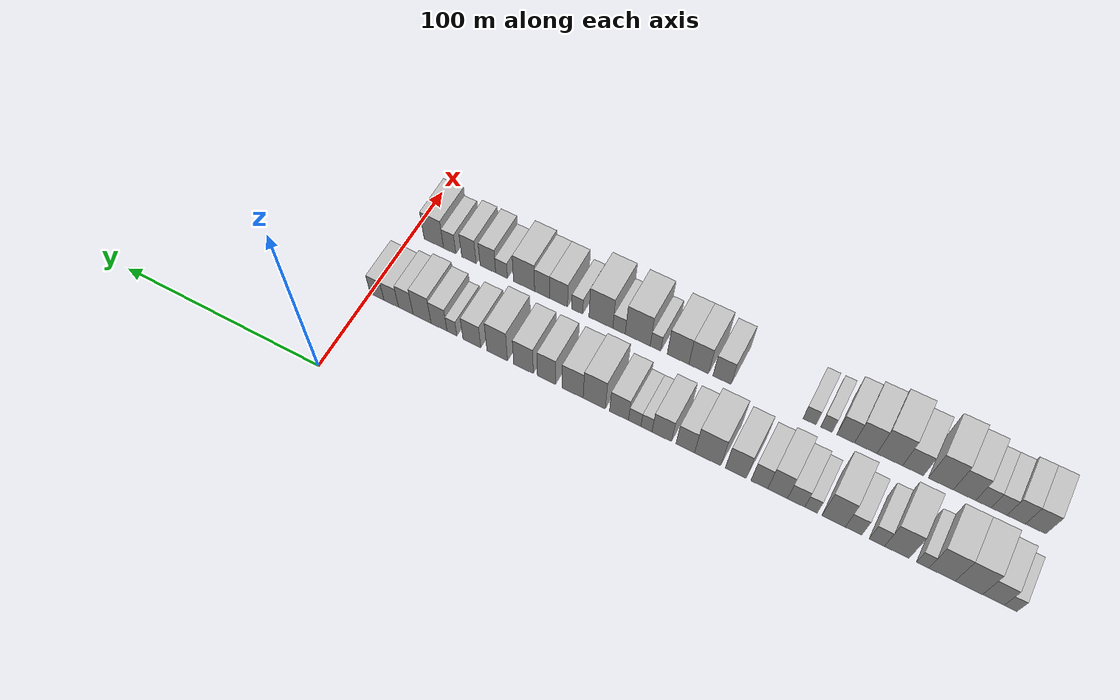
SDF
<sdf version="1.6">
 <world name="default">
  <model name="building_1">
   <static>1</static>
   <pose>50.0000 -287.4973 0 0.000000 0.000000 0.000000</pose>
   <link name="link">
    <pose>0 0 6.00 0 0 0</pose>
    <collision name="collision"><geometry><box><size>20.0000 5.0055 12.0000</size></box></geometry></collision>
    <visual name="visual">
     <cast_shadows>0</cast_shadows>
     <geometry><box><size>20.0000 5.0055 12.0000</size></box></geometry>
     <material>
      <script>
       <uri>model://HANNAS_wall/materials/scripts</uri>
       <uri>model://HANNAS_wall/materials/textures</uri>
       <name>vrc/HANNAS_wall</name>
      </script>
     </material>
    </visual>
   </link>
  </model>
  <model name="building_2">
   <static>1</static>
   <pose>50.0000 -280.6761 0 0.000000 0.000000 0.000000</pose>
   <link name="link">
    <pose>0 0 9.00 0 0 0</pose>
    <collision name="collision"><geometry><box><size>20.0000 8.6367 18.0000</size></box></geometry></collision>
    <visual name="visual">
     <cast_shadows>0</cast_shadows>
     <geometry><box><size>20.0000 8.6367 18.0000</size></box></geometry>
     <material>
      <script>
       <uri>model://HANNAS_wall/materials/scripts</uri>
       <uri>model://HANNAS_wall/materials/textures</uri>
       <name>vrc/HANNAS_wall</name>
      </script>
     </material>
    </visual>
   </link>
  </model>
  <model name="building_3">
   <static>1</static>
   <pose>50.0000 -270.8673 0 0.000000 0.000000 0.000000</pose>
   <link name="link">
    <pose>0 0 12.00 0 0 0</pose>
    <collision name="collision"><geometry><box><size>20.0000 10.9810 24.0000</size></box></geometry></collision>
    <visual name="visual">
     <cast_shadows>0</cast_shadows>
     <geometry><box><size>20.0000 10.9810 24.0000</size></box></geometry>
     <material>
      <script>
       <uri>model://HANNAS_wall/materials/scripts</uri>
       <uri>model://HANNAS_wall/materials/textures</uri>
       <name>vrc/HANNAS_wall</name>
      </script>
     </material>
    </visual>
   </link>
  </model>
  <model name="building_4">
   <static>1</static>
   <pose>50.0000 -259.9896 0 0.000000 0.000000 0.000000</pose>
   <link name="link">
    <pose>0 0 12.00 0 0 0</pose>
    <collision name="collision"><geometry><box><size>20.0000 10.7745 24.0000</size></box></geometry></collision>
    <visual name="visual">
     <cast_shadows>0</cast_shadows>
     <geometry><box><size>20.0000 10.7745 24.0000</size></box></geometry>
     <material>
      <script>
       <uri>model://HANNAS_wall/materials/scripts</uri>
       <uri>model://HANNAS_wall/materials/textures</uri>
       <name>vrc/HANNAS_wall</name>
      </script>
     </material>
    </visual>
   </link>
  </model>
  <model name="building_5">
   <static>1</static>
   <pose>50.0000 -252.1168 0 0.000000 0.000000 0.000000</pose>
   <link name="link">
    <pose>0 0 6.00 0 0 0</pose>
    <collision name="collision"><geometry><box><size>20.0000 4.9711 12.0000</size></box></geometry></collision>
    <visual name="visual">
     <cast_shadows>0</cast_shadows>
     <geometry><box><size>20.0000 4.9711 12.0000</size></box></geometry>
     <material>
      <script>
       <uri>model://HANNAS_wall/materials/scripts</uri>
       <uri>model://HANNAS_wall/materials/textures</uri>
       <name>vrc/HANNAS_wall</name>
      </script>
     </material>
    </visual>
   </link>
  </model>
  <model name="building_6">
   <static>1</static>
   <pose>50.0000 -241.5734 0 0.000000 0.000000 0.000000</pose>
   <link name="link">
    <pose>0 0 12.00 0 0 0</pose>
    <collision name="collision"><geometry><box><size>20.0000 10.1158 24.0000</size></box></geometry></collision>
    <visual name="visual">
     <cast_shadows>0</cast_shadows>
     <geometry><box><size>20.0000 10.1158 24.0000</size></box></geometry>
     <material>
      <script>
       <uri>model://HANNAS_wall/materials/scripts</uri>
       <uri>model://HANNAS_wall/materials/textures</uri>
       <name>vrc/HANNAS_wall</name>
      </script>
     </material>
    </visual>
   </link>
  </model>
  <model name="building_7">
   <static>1</static>
   <pose>50.0000 -233.3102 0 0.000000 0.000000 0.000000</pose>
   <link name="link">
    <pose>0 0 7.50 0 0 0</pose>
    <collision name="collision"><geometry><box><size>20.0000 6.4105 15.0000</size></box></geometry></collision>
    <visual name="visual">
     <cast_shadows>0</cast_shadows>
     <geometry><box><size>20.0000 6.4105 15.0000</size></box></geometry>
     <material>
      <script>
       <uri>model://HANNAS_wall/materials/scripts</uri>
       <uri>model://HANNAS_wall/materials/textures</uri>
       <name>vrc/HANNAS_wall</name>
      </script>
     </material>
    </visual>
   </link>
  </model>
  <model name="building_8">
   <static>1</static>
   <pose>50.0000 -223.6317 0 0.000000 0.000000 0.000000</pose>
   <link name="link">
    <pose>0 0 7.50 0 0 0</pose>
    <collision name="collision"><geometry><box><size>20.0000 6.9466 15.0000</size></box></geometry></collision>
    <visual name="visual">
     <cast_shadows>0</cast_shadows>
     <geometry><box><size>20.0000 6.9466 15.0000</size></box></geometry>
     <material>
      <script>
       <uri>model://HANNAS_wall/materials/scripts</uri>
       <uri>model://HANNAS_wall/materials/textures</uri>
       <name>vrc/HANNAS_wall</name>
      </script>
     </material>
    </visual>
   </link>
  </model>
  <model name="building_9">
   <static>1</static>
   <pose>50.0000 -215.2181 0 0.000000 0.000000 0.000000</pose>
   <link name="link">
    <pose>0 0 12.00 0 0 0</pose>
    <collision name="collision"><geometry><box><size>20.0000 9.8805 24.0000</size></box></geometry></collision>
    <visual name="visual">
     <cast_shadows>0</cast_shadows>
     <geometry><box><size>20.0000 9.8805 24.0000</size></box></geometry>
     <material>
      <script>
       <uri>model://HANNAS_wall/materials/scripts</uri>
       <uri>model://HANNAS_wall/materials/textures</uri>
       <name>vrc/HANNAS_wall</name>
      </script>
     </material>
    </visual>
   </link>
  </model>
  <model name="building_10">
   <static>1</static>
   <pose>50.0000 -205.6280 0 0.000000 0.000000 0.000000</pose>
   <link name="link">
    <pose>0 0 6.00 0 0 0</pose>
    <collision name="collision"><geometry><box><size>20.0000 5.2998 12.0000</size></box></geometry></collision>
    <visual name="visual">
     <cast_shadows>0</cast_shadows>
     <geometry><box><size>20.0000 5.2998 12.0000</size></box></geometry>
     <material>
      <script>
       <uri>model://HANNAS_wall/materials/scripts</uri>
       <uri>model://HANNAS_wall/materials/textures</uri>
       <name>vrc/HANNAS_wall</name>
      </script>
     </material>
    </visual>
   </link>
  </model>
  <model name="building_11">
   <static>1</static>
   <pose>50.0000 -199.2638 0 0.000000 0.000000 0.000000</pose>
   <link name="link">
    <pose>0 0 7.50 0 0 0</pose>
    <collision name="collision"><geometry><box><size>20.0000 7.4287 15.0000</size></box></geometry></collision>
    <visual name="visual">
     <cast_shadows>0</cast_shadows>
     <geometry><box><size>20.0000 7.4287 15.0000</size></box></geometry>
     <material>
      <script>
       <uri>model://HANNAS_wall/materials/scripts</uri>
       <uri>model://HANNAS_wall/materials/textures</uri>
       <name>vrc/HANNAS_wall</name>
      </script>
     </material>
    </visual>
   </link>
  </model>
  <model name="building_12">
   <static>1</static>
   <pose>50.0000 -191.2809 0 0.000000 0.000000 0.000000</pose>
   <link name="link">
    <pose>0 0 10.50 0 0 0</pose>
    <collision name="collision"><geometry><box><size>20.0000 8.5371 21.0000</size></box></geometry></collision>
    <visual name="visual">
     <cast_shadows>0</cast_shadows>
     <geometry><box><size>20.0000 8.5371 21.0000</size></box></geometry>
     <material>
      <script>
       <uri>model://HANNAS_wall/materials/scripts</uri>
       <uri>model://HANNAS_wall/materials/textures</uri>
       <name>vrc/HANNAS_wall</name>
      </script>
     </material>
    </visual>
   </link>
  </model>
  <model name="building_13">
   <static>1</static>
   <pose>50.0000 -183.3547 0 0.000000 0.000000 0.000000</pose>
   <link name="link">
    <pose>0 0 9.00 0 0 0</pose>
    <collision name="collision"><geometry><box><size>20.0000 7.3152 18.0000</size></box></geometry></collision>
    <visual name="visual">
     <cast_shadows>0</cast_shadows>
     <geometry><box><size>20.0000 7.3152 18.0000</size></box></geometry>
     <material>
      <script>
       <uri>model://HANNAS_wall/materials/scripts</uri>
       <uri>model://HANNAS_wall/materials/textures</uri>
       <name>vrc/HANNAS_wall</name>
      </script>
     </material>
    </visual>
   </link>
  </model>
  <model name="building_14">
   <static>1</static>
   <pose>50.0000 -173.0662 0 0.000000 0.000000 0.000000</pose>
   <link name="link">
    <pose>0 0 10.50 0 0 0</pose>
    <collision name="collision"><geometry><box><size>20.0000 9.2618 21.0000</size></box></geometry></collision>
    <visual name="visual">
     <cast_shadows>0</cast_shadows>
     <geometry><box><size>20.0000 9.2618 21.0000</size></box></geometry>
     <material>
      <script>
       <uri>model://HANNAS_wall/materials/scripts</uri>
       <uri>model://HANNAS_wall/materials/textures</uri>
       <name>vrc/HANNAS_wall</name>
      </script>
     </material>
    </visual>
   </link>
  </model>
  <model name="building_15">
   <static>1</static>
   <pose>50.0000 -160.6138 0 0.000000 0.000000 0.000000</pose>
   <link name="link">
    <pose>0 0 12.00 0 0 0</pose>
    <collision name="collision"><geometry><box><size>20.0000 11.6430 24.0000</size></box></geometry></collision>
    <visual name="visual">
     <cast_shadows>0</cast_shadows>
     <geometry><box><size>20.0000 11.6430 24.0000</size></box></geometry>
     <material>
      <script>
       <uri>model://HANNAS_wall/materials/scripts</uri>
       <uri>model://HANNAS_wall/materials/textures</uri>
       <name>vrc/HANNAS_wall</name>
      </script>
     </material>
    </visual>
   </link>
  </model>
  <model name="building_16">
   <static>1</static>
   <pose>50.0000 -150.6305 0 0.000000 0.000000 0.000000</pose>
   <link name="link">
    <pose>0 0 9.00 0 0 0</pose>
    <collision name="collision"><geometry><box><size>20.0000 8.3237 18.0000</size></box></geometry></collision>
    <visual name="visual">
     <cast_shadows>0</cast_shadows>
     <geometry><box><size>20.0000 8.3237 18.0000</size></box></geometry>
     <material>
      <script>
       <uri>model://HANNAS_wall/materials/scripts</uri>
       <uri>model://HANNAS_wall/materials/textures</uri>
       <name>vrc/HANNAS_wall</name>
      </script>
     </material>
    </visual>
   </link>
  </model>
  <model name="building_17">
   <static>1</static>
   <pose>50.0000 -140.0535 0 0.000000 0.000000 0.000000</pose>
   <link name="link">
    <pose>0 0 9.00 0 0 0</pose>
    <collision name="collision"><geometry><box><size>20.0000 8.8303 18.0000</size></box></geometry></collision>
    <visual name="visual">
     <cast_shadows>0</cast_shadows>
     <geometry><box><size>20.0000 8.8303 18.0000</size></box></geometry>
     <material>
      <script>
       <uri>model://HANNAS_wall/materials/scripts</uri>
       <uri>model://HANNAS_wall/materials/textures</uri>
       <name>vrc/HANNAS_wall</name>
      </script>
     </material>
    </visual>
   </link>
  </model>
  <model name="building_18">
   <static>1</static>
   <pose>50.0000 -133.1016 0 0.000000 0.000000 0.000000</pose>
   <link name="link">
    <pose>0 0 6.00 0 0 0</pose>
    <collision name="collision"><geometry><box><size>20.0000 5.0734 12.0000</size></box></geometry></collision>
    <visual name="visual">
     <cast_shadows>0</cast_shadows>
     <geometry><box><size>20.0000 5.0734 12.0000</size></box></geometry>
     <material>
      <script>
       <uri>model://HANNAS_wall/materials/scripts</uri>
       <uri>model://HANNAS_wall/materials/textures</uri>
       <name>vrc/HANNAS_wall</name>
      </script>
     </material>
    </visual>
   </link>
  </model>
  <model name="building_19">
   <static>1</static>
   <pose>50.0000 -127.7037 0 0.000000 0.000000 0.000000</pose>
   <link name="link">
    <pose>0 0 6.00 0 0 0</pose>
    <collision name="collision"><geometry><box><size>20.0000 5.7223 12.0000</size></box></geometry></collision>
    <visual name="visual">
     <cast_shadows>0</cast_shadows>
     <geometry><box><size>20.0000 5.7223 12.0000</size></box></geometry>
     <material>
      <script>
       <uri>model://HANNAS_wall/materials/scripts</uri>
       <uri>model://HANNAS_wall/materials/textures</uri>
       <name>vrc/HANNAS_wall</name>
      </script>
     </material>
    </visual>
   </link>
  </model>
  <model name="building_20">
   <static>1</static>
   <pose>50.0000 -120.5099 0 0.000000 0.000000 0.000000</pose>
   <link name="link">
    <pose>0 0 9.00 0 0 0</pose>
    <collision name="collision"><geometry><box><size>20.0000 8.6654 18.0000</size></box></geometry></collision>
    <visual name="visual">
     <cast_shadows>0</cast_shadows>
     <geometry><box><size>20.0000 8.6654 18.0000</size></box></geometry>
     <material>
      <script>
       <uri>model://HANNAS_wall/materials/scripts</uri>
       <uri>model://HANNAS_wall/materials/textures</uri>
       <name>vrc/HANNAS_wall</name>
      </script>
     </material>
    </visual>
   </link>
  </model>
  <model name="building_21">
   <static>1</static>
   <pose>50.0000 -109.0209 0 0.000000 0.000000 0.000000</pose>
   <link name="link">
    <pose>0 0 12.00 0 0 0</pose>
    <collision name="collision"><geometry><box><size>20.0000 10.3126 24.0000</size></box></geometry></collision>
    <visual name="visual">
     <cast_shadows>0</cast_shadows>
     <geometry><box><size>20.0000 10.3126 24.0000</size></box></geometry>
     <material>
      <script>
       <uri>model://HANNAS_wall/materials/scripts</uri>
       <uri>model://HANNAS_wall/materials/textures</uri>
       <name>vrc/HANNAS_wall</name>
      </script>
     </material>
    </visual>
   </link>
  </model>
  <model name="building_22">
   <static>1</static>
   <pose>50.0000 -98.8881 0 0.000000 0.000000 0.000000</pose>
   <link name="link">
    <pose>0 0 10.50 0 0 0</pose>
    <collision name="collision"><geometry><box><size>20.0000 9.9530 21.0000</size></box></geometry></collision>
    <visual name="visual">
     <cast_shadows>0</cast_shadows>
     <geometry><box><size>20.0000 9.9530 21.0000</size></box></geometry>
     <material>
      <script>
       <uri>model://HANNAS_wall/materials/scripts</uri>
       <uri>model://HANNAS_wall/materials/textures</uri>
       <name>vrc/HANNAS_wall</name>
      </script>
     </material>
    </visual>
   </link>
  </model>
  <model name="building_23">
   <static>1</static>
   <pose>50.0000 -86.6172 0 0.000000 0.000000 0.000000</pose>
   <link name="link">
    <pose>0 0 10.50 0 0 0</pose>
    <collision name="collision"><geometry><box><size>20.0000 8.5887 21.0000</size></box></geometry></collision>
    <visual name="visual">
     <cast_shadows>0</cast_shadows>
     <geometry><box><size>20.0000 8.5887 21.0000</size></box></geometry>
     <material>
      <script>
       <uri>model://HANNAS_wall/materials/scripts</uri>
       <uri>model://HANNAS_wall/materials/textures</uri>
       <name>vrc/HANNAS_wall</name>
      </script>
     </material>
    </visual>
   </link>
  </model>
  <model name="building_24">
   <static>1</static>
   <pose>50.0000 -75.6412 0 0.000000 0.000000 0.000000</pose>
   <link name="link">
    <pose>0 0 10.50 0 0 0</pose>
    <collision name="collision"><geometry><box><size>20.0000 9.3633 21.0000</size></box></geometry></collision>
    <visual name="visual">
     <cast_shadows>0</cast_shadows>
     <geometry><box><size>20.0000 9.3633 21.0000</size></box></geometry>
     <material>
      <script>
       <uri>model://HANNAS_wall/materials/scripts</uri>
       <uri>model://HANNAS_wall/materials/textures</uri>
       <name>vrc/HANNAS_wall</name>
      </script>
     </material>
    </visual>
   </link>
  </model>
  <model name="building_25">
   <static>1</static>
   <pose>50.0000 -62.9925 0 0.000000 0.000000 0.000000</pose>
   <link name="link">
    <pose>0 0 12.00 0 0 0</pose>
    <collision name="collision"><geometry><box><size>20.0000 9.9341 24.0000</size></box></geometry></collision>
    <visual name="visual">
     <cast_shadows>0</cast_shadows>
     <geometry><box><size>20.0000 9.9341 24.0000</size></box></geometry>
     <material>
      <script>
       <uri>model://HANNAS_wall/materials/scripts</uri>
       <uri>model://HANNAS_wall/materials/textures</uri>
       <name>vrc/HANNAS_wall</name>
      </script>
     </material>
    </visual>
   </link>
  </model>
  <model name="building_26">
   <static>1</static>
   <pose>50.0000 -50.6560 0 0.000000 0.000000 0.000000</pose>
   <link name="link">
    <pose>0 0 9.00 0 0 0</pose>
    <collision name="collision"><geometry><box><size>20.0000 8.7389 18.0000</size></box></geometry></collision>
    <visual name="visual">
     <cast_shadows>0</cast_shadows>
     <geometry><box><size>20.0000 8.7389 18.0000</size></box></geometry>
     <material>
      <script>
       <uri>model://HANNAS_wall/materials/scripts</uri>
       <uri>model://HANNAS_wall/materials/textures</uri>
       <name>vrc/HANNAS_wall</name>
      </script>
     </material>
    </visual>
   </link>
  </model>
  <model name="building_27">
   <static>1</static>
   <pose>50.0000 -40.8635 0 0.000000 0.000000 0.000000</pose>
   <link name="link">
    <pose>0 0 6.00 0 0 0</pose>
    <collision name="collision"><geometry><box><size>20.0000 4.8460 12.0000</size></box></geometry></collision>
    <visual name="visual">
     <cast_shadows>0</cast_shadows>
     <geometry><box><size>20.0000 4.8460 12.0000</size></box></geometry>
     <material>
      <script>
       <uri>model://HANNAS_wall/materials/scripts</uri>
       <uri>model://HANNAS_wall/materials/textures</uri>
       <name>vrc/HANNAS_wall</name>
      </script>
     </material>
    </visual>
   </link>
  </model>
  <model name="building_28">
   <static>1</static>
   <pose>50.0000 -34.4788 0 0.000000 0.000000 0.000000</pose>
   <link name="link">
    <pose>0 0 9.00 0 0 0</pose>
    <collision name="collision"><geometry><box><size>20.0000 7.9235 18.0000</size></box></geometry></collision>
    <visual name="visual">
     <cast_shadows>0</cast_shadows>
     <geometry><box><size>20.0000 7.9235 18.0000</size></box></geometry>
     <material>
      <script>
       <uri>model://HANNAS_wall/materials/scripts</uri>
       <uri>model://HANNAS_wall/materials/textures</uri>
       <name>vrc/HANNAS_wall</name>
      </script>
     </material>
    </visual>
   </link>
  </model>
  <model name="building_29">
   <static>1</static>
   <pose>50.0000 -26.0152 0 0.000000 0.000000 0.000000</pose>
   <link name="link">
    <pose>0 0 10.50 0 0 0</pose>
    <collision name="collision"><geometry><box><size>20.0000 9.0037 21.0000</size></box></geometry></collision>
    <visual name="visual">
     <cast_shadows>0</cast_shadows>
     <geometry><box><size>20.0000 9.0037 21.0000</size></box></geometry>
     <material>
      <script>
       <uri>model://HANNAS_wall/materials/scripts</uri>
       <uri>model://HANNAS_wall/materials/textures</uri>
       <name>vrc/HANNAS_wall</name>
      </script>
     </material>
    </visual>
   </link>
  </model>
  <model name="building_30">
   <static>1</static>
   <pose>50.0000 -17.8547 0 0.000000 0.000000 0.000000</pose>
   <link name="link">
    <pose>0 0 9.00 0 0 0</pose>
    <collision name="collision"><geometry><box><size>20.0000 7.3173 18.0000</size></box></geometry></collision>
    <visual name="visual">
     <cast_shadows>0</cast_shadows>
     <geometry><box><size>20.0000 7.3173 18.0000</size></box></geometry>
     <material>
      <script>
       <uri>model://HANNAS_wall/materials/scripts</uri>
       <uri>model://HANNAS_wall/materials/textures</uri>
       <name>vrc/HANNAS_wall</name>
      </script>
     </material>
    </visual>
   </link>
  </model>
  <model name="building_31">
   <static>1</static>
   <pose>50.0000 -10.4761 0 0.000000 0.000000 0.000000</pose>
   <link name="link">
    <pose>0 0 7.50 0 0 0</pose>
    <collision name="collision"><geometry><box><size>20.0000 7.4399 15.0000</size></box></geometry></collision>
    <visual name="visual">
     <cast_shadows>0</cast_shadows>
     <geometry><box><size>20.0000 7.4399 15.0000</size></box></geometry>
     <material>
      <script>
       <uri>model://HANNAS_wall/materials/scripts</uri>
       <uri>model://HANNAS_wall/materials/textures</uri>
       <name>vrc/HANNAS_wall</name>
      </script>
     </material>
    </visual>
   </link>
  </model>
  <model name="building_32">
   <static>1</static>
   <pose>50.0000 -3.2750 0 0.000000 0.000000 0.000000</pose>
   <link name="link">
    <pose>0 0 7.50 0 0 0</pose>
    <collision name="collision"><geometry><box><size>20.0000 6.9623 15.0000</size></box></geometry></collision>
    <visual name="visual">
     <cast_shadows>0</cast_shadows>
     <geometry><box><size>20.0000 6.9623 15.0000</size></box></geometry>
     <material>
      <script>
       <uri>model://HANNAS_wall/materials/scripts</uri>
       <uri>model://HANNAS_wall/materials/textures</uri>
       <name>vrc/HANNAS_wall</name>
      </script>
     </material>
    </visual>
   </link>
  </model>
  <model name="building_59">
   <static>1</static>
   <pose>85.0000 -285.8442 0 0.000000 0.000000 0.000000</pose>
   <link name="link">
    <pose>0 0 9.00 0 0 0</pose>
    <collision name="collision"><geometry><box><size>20.0000 8.3116 18.0000</size></box></geometry></collision>
    <visual name="visual">
     <cast_shadows>0</cast_shadows>
     <geometry><box><size>20.0000 8.3116 18.0000</size></box></geometry>
     <material>
      <script>
       <uri>model://HANNAS_wall/materials/scripts</uri>
       <uri>model://HANNAS_wall/materials/textures</uri>
       <name>vrc/HANNAS_wall</name>
      </script>
     </material>
    </visual>
   </link>
  </model>
  <model name="building_60">
   <static>1</static>
   <pose>85.0000 -277.9580 0 0.000000 0.000000 0.000000</pose>
   <link name="link">
    <pose>0 0 9.00 0 0 0</pose>
    <collision name="collision"><geometry><box><size>20.0000 7.4609 18.0000</size></box></geometry></collision>
    <visual name="visual">
     <cast_shadows>0</cast_shadows>
     <geometry><box><size>20.0000 7.4609 18.0000</size></box></geometry>
     <material>
      <script>
       <uri>model://HANNAS_wall/materials/scripts</uri>
       <uri>model://HANNAS_wall/materials/textures</uri>
       <name>vrc/HANNAS_wall</name>
      </script>
     </material>
    </visual>
   </link>
  </model>
  <model name="building_61">
   <static>1</static>
   <pose>85.0000 -270.9569 0 0.000000 0.000000 0.000000</pose>
   <link name="link">
    <pose>0 0 7.50 0 0 0</pose>
    <collision name="collision"><geometry><box><size>20.0000 6.5413 15.0000</size></box></geometry></collision>
    <visual name="visual">
     <cast_shadows>0</cast_shadows>
     <geometry><box><size>20.0000 6.5413 15.0000</size></box></geometry>
     <material>
      <script>
       <uri>model://HANNAS_wall/materials/scripts</uri>
       <uri>model://HANNAS_wall/materials/textures</uri>
       <name>vrc/HANNAS_wall</name>
      </script>
     </material>
    </visual>
   </link>
  </model>
  <model name="building_62">
   <static>1</static>
   <pose>85.0000 -264.4791 0 0.000000 0.000000 0.000000</pose>
   <link name="link">
    <pose>0 0 7.50 0 0 0</pose>
    <collision name="collision"><geometry><box><size>20.0000 6.4141 15.0000</size></box></geometry></collision>
    <visual name="visual">
     <cast_shadows>0</cast_shadows>
     <geometry><box><size>20.0000 6.4141 15.0000</size></box></geometry>
     <material>
      <script>
       <uri>model://HANNAS_wall/materials/scripts</uri>
       <uri>model://HANNAS_wall/materials/textures</uri>
       <name>vrc/HANNAS_wall</name>
      </script>
     </material>
    </visual>
   </link>
  </model>
  <model name="building_63">
   <static>1</static>
   <pose>85.0000 -256.6060 0 0.000000 0.000000 0.000000</pose>
   <link name="link">
    <pose>0 0 10.50 0 0 0</pose>
    <collision name="collision"><geometry><box><size>20.0000 9.3320 21.0000</size></box></geometry></collision>
    <visual name="visual">
     <cast_shadows>0</cast_shadows>
     <geometry><box><size>20.0000 9.3320 21.0000</size></box></geometry>
     <material>
      <script>
       <uri>model://HANNAS_wall/materials/scripts</uri>
       <uri>model://HANNAS_wall/materials/textures</uri>
       <name>vrc/HANNAS_wall</name>
      </script>
     </material>
    </visual>
   </link>
  </model>
  <model name="building_64">
   <static>1</static>
   <pose>85.0000 -246.7044 0 0.000000 0.000000 0.000000</pose>
   <link name="link">
    <pose>0 0 12.00 0 0 0</pose>
    <collision name="collision"><geometry><box><size>20.0000 10.4712 24.0000</size></box></geometry></collision>
    <visual name="visual">
     <cast_shadows>0</cast_shadows>
     <geometry><box><size>20.0000 10.4712 24.0000</size></box></geometry>
     <material>
      <script>
       <uri>model://HANNAS_wall/materials/scripts</uri>
       <uri>model://HANNAS_wall/materials/textures</uri>
       <name>vrc/HANNAS_wall</name>
      </script>
     </material>
    </visual>
   </link>
  </model>
  <model name="building_65">
   <static>1</static>
   <pose>85.0000 -235.0128 0 0.000000 0.000000 0.000000</pose>
   <link name="link">
    <pose>0 0 9.00 0 0 0</pose>
    <collision name="collision"><geometry><box><size>20.0000 8.9121 18.0000</size></box></geometry></collision>
    <visual name="visual">
     <cast_shadows>0</cast_shadows>
     <geometry><box><size>20.0000 8.9121 18.0000</size></box></geometry>
     <material>
      <script>
       <uri>model://HANNAS_wall/materials/scripts</uri>
       <uri>model://HANNAS_wall/materials/textures</uri>
       <name>vrc/HANNAS_wall</name>
      </script>
     </material>
    </visual>
   </link>
  </model>
  <model name="building_66">
   <static>1</static>
   <pose>85.0000 -225.0713 0 0.000000 0.000000 0.000000</pose>
   <link name="link">
    <pose>0 0 12.00 0 0 0</pose>
    <collision name="collision"><geometry><box><size>20.0000 10.9709 24.0000</size></box></geometry></collision>
    <visual name="visual">
     <cast_shadows>0</cast_shadows>
     <geometry><box><size>20.0000 10.9709 24.0000</size></box></geometry>
     <material>
      <script>
       <uri>model://HANNAS_wall/materials/scripts</uri>
       <uri>model://HANNAS_wall/materials/textures</uri>
       <name>vrc/HANNAS_wall</name>
      </script>
     </material>
    </visual>
   </link>
  </model>
  <model name="building_67">
   <static>1</static>
   <pose>85.0000 -214.7321 0 0.000000 0.000000 0.000000</pose>
   <link name="link">
    <pose>0 0 10.50 0 0 0</pose>
    <collision name="collision"><geometry><box><size>20.0000 9.7075 21.0000</size></box></geometry></collision>
    <visual name="visual">
     <cast_shadows>0</cast_shadows>
     <geometry><box><size>20.0000 9.7075 21.0000</size></box></geometry>
     <material>
      <script>
       <uri>model://HANNAS_wall/materials/scripts</uri>
       <uri>model://HANNAS_wall/materials/textures</uri>
       <name>vrc/HANNAS_wall</name>
      </script>
     </material>
    </visual>
   </link>
  </model>
  <model name="building_68">
   <static>1</static>
   <pose>85.0000 -205.9908 0 0.000000 0.000000 0.000000</pose>
   <link name="link">
    <pose>0 0 9.00 0 0 0</pose>
    <collision name="collision"><geometry><box><size>20.0000 7.7750 18.0000</size></box></geometry></collision>
    <visual name="visual">
     <cast_shadows>0</cast_shadows>
     <geometry><box><size>20.0000 7.7750 18.0000</size></box></geometry>
     <material>
      <script>
       <uri>model://HANNAS_wall/materials/scripts</uri>
       <uri>model://HANNAS_wall/materials/textures</uri>
       <name>vrc/HANNAS_wall</name>
      </script>
     </material>
    </visual>
   </link>
  </model>
  <model name="building_69">
   <static>1</static>
   <pose>85.0000 -197.5848 0 0.000000 0.000000 0.000000</pose>
   <link name="link">
    <pose>0 0 6.00 0 0 0</pose>
    <collision name="collision"><geometry><box><size>20.0000 5.0372 12.0000</size></box></geometry></collision>
    <visual name="visual">
     <cast_shadows>0</cast_shadows>
     <geometry><box><size>20.0000 5.0372 12.0000</size></box></geometry>
     <material>
      <script>
       <uri>model://HANNAS_wall/materials/scripts</uri>
       <uri>model://HANNAS_wall/materials/textures</uri>
       <name>vrc/HANNAS_wall</name>
      </script>
     </material>
    </visual>
   </link>
  </model>
  <model name="building_70">
   <static>1</static>
   <pose>85.0000 -190.1672 0 0.000000 0.000000 0.000000</pose>
   <link name="link">
    <pose>0 0 6.00 0 0 0</pose>
    <collision name="collision"><geometry><box><size>20.0000 5.7979 12.0000</size></box></geometry></collision>
    <visual name="visual">
     <cast_shadows>0</cast_shadows>
     <geometry><box><size>20.0000 5.7979 12.0000</size></box></geometry>
     <material>
      <script>
       <uri>model://HANNAS_wall/materials/scripts</uri>
       <uri>model://HANNAS_wall/materials/textures</uri>
       <name>vrc/HANNAS_wall</name>
      </script>
     </material>
    </visual>
   </link>
  </model>
  <model name="building_71">
   <static>1</static>
   <pose>85.0000 -150.7429 0 0.000000 0.000000 0.000000</pose>
   <link name="link">
    <pose>0 0 9.00 0 0 0</pose>
    <collision name="collision"><geometry><box><size>20.0000 8.3503 18.0000</size></box></geometry></collision>
    <visual name="visual">
     <cast_shadows>0</cast_shadows>
     <geometry><box><size>20.0000 8.3503 18.0000</size></box></geometry>
     <material>
      <script>
       <uri>model://HANNAS_wall/materials/scripts</uri>
       <uri>model://HANNAS_wall/materials/textures</uri>
       <name>vrc/HANNAS_wall</name>
      </script>
     </material>
    </visual>
   </link>
  </model>
  <model name="building_72">
   <static>1</static>
   <pose>85.0000 -140.0143 0 0.000000 0.000000 0.000000</pose>
   <link name="link">
    <pose>0 0 10.50 0 0 0</pose>
    <collision name="collision"><geometry><box><size>20.0000 9.1069 21.0000</size></box></geometry></collision>
    <visual name="visual">
     <cast_shadows>0</cast_shadows>
     <geometry><box><size>20.0000 9.1069 21.0000</size></box></geometry>
     <material>
      <script>
       <uri>model://HANNAS_wall/materials/scripts</uri>
       <uri>model://HANNAS_wall/materials/textures</uri>
       <name>vrc/HANNAS_wall</name>
      </script>
     </material>
    </visual>
   </link>
  </model>
  <model name="building_73">
   <static>1</static>
   <pose>85.0000 -130.4075 0 0.000000 0.000000 0.000000</pose>
   <link name="link">
    <pose>0 0 10.50 0 0 0</pose>
    <collision name="collision"><geometry><box><size>20.0000 10.1067 21.0000</size></box></geometry></collision>
    <visual name="visual">
     <cast_shadows>0</cast_shadows>
     <geometry><box><size>20.0000 10.1067 21.0000</size></box></geometry>
     <material>
      <script>
       <uri>model://HANNAS_wall/materials/scripts</uri>
       <uri>model://HANNAS_wall/materials/textures</uri>
       <name>vrc/HANNAS_wall</name>
      </script>
     </material>
    </visual>
   </link>
  </model>
  <model name="building_74">
   <static>1</static>
   <pose>85.0000 -119.8546 0 0.000000 0.000000 0.000000</pose>
   <link name="link">
    <pose>0 0 6.00 0 0 0</pose>
    <collision name="collision"><geometry><box><size>20.0000 4.9990 12.0000</size></box></geometry></collision>
    <visual name="visual">
     <cast_shadows>0</cast_shadows>
     <geometry><box><size>20.0000 4.9990 12.0000</size></box></geometry>
     <material>
      <script>
       <uri>model://HANNAS_wall/materials/scripts</uri>
       <uri>model://HANNAS_wall/materials/textures</uri>
       <name>vrc/HANNAS_wall</name>
      </script>
     </material>
    </visual>
   </link>
  </model>
  <model name="building_75">
   <static>1</static>
   <pose>85.0000 -111.4291 0 0.000000 0.000000 0.000000</pose>
   <link name="link">
    <pose>0 0 12.00 0 0 0</pose>
    <collision name="collision"><geometry><box><size>20.0000 11.8522 24.0000</size></box></geometry></collision>
    <visual name="visual">
     <cast_shadows>0</cast_shadows>
     <geometry><box><size>20.0000 11.8522 24.0000</size></box></geometry>
     <material>
      <script>
       <uri>model://HANNAS_wall/materials/scripts</uri>
       <uri>model://HANNAS_wall/materials/textures</uri>
       <name>vrc/HANNAS_wall</name>
      </script>
     </material>
    </visual>
   </link>
  </model>
  <model name="building_76">
   <static>1</static>
   <pose>85.0000 -102.5462 0 0.000000 0.000000 0.000000</pose>
   <link name="link">
    <pose>0 0 6.00 0 0 0</pose>
    <collision name="collision"><geometry><box><size>20.0000 5.9135 12.0000</size></box></geometry></collision>
    <visual name="visual">
     <cast_shadows>0</cast_shadows>
     <geometry><box><size>20.0000 5.9135 12.0000</size></box></geometry>
     <material>
      <script>
       <uri>model://HANNAS_wall/materials/scripts</uri>
       <uri>model://HANNAS_wall/materials/textures</uri>
       <name>vrc/HANNAS_wall</name>
      </script>
     </material>
    </visual>
   </link>
  </model>
  <model name="building_77">
   <static>1</static>
   <pose>85.0000 -93.8526 0 0.000000 0.000000 0.000000</pose>
   <link name="link">
    <pose>0 0 12.00 0 0 0</pose>
    <collision name="collision"><geometry><box><size>20.0000 11.4738 24.0000</size></box></geometry></collision>
    <visual name="visual">
     <cast_shadows>0</cast_shadows>
     <geometry><box><size>20.0000 11.4738 24.0000</size></box></geometry>
     <material>
      <script>
       <uri>model://HANNAS_wall/materials/scripts</uri>
       <uri>model://HANNAS_wall/materials/textures</uri>
       <name>vrc/HANNAS_wall</name>
      </script>
     </material>
    </visual>
   </link>
  </model>
  <model name="building_78">
   <static>1</static>
   <pose>85.0000 -82.4245 0 0.000000 0.000000 0.000000</pose>
   <link name="link">
    <pose>0 0 6.00 0 0 0</pose>
    <collision name="collision"><geometry><box><size>20.0000 5.3823 12.0000</size></box></geometry></collision>
    <visual name="visual">
     <cast_shadows>0</cast_shadows>
     <geometry><box><size>20.0000 5.3823 12.0000</size></box></geometry>
     <material>
      <script>
       <uri>model://HANNAS_wall/materials/scripts</uri>
       <uri>model://HANNAS_wall/materials/textures</uri>
       <name>vrc/HANNAS_wall</name>
      </script>
     </material>
    </visual>
   </link>
  </model>
  <model name="building_79">
   <static>1</static>
   <pose>85.0000 -73.3188 0 0.000000 0.000000 0.000000</pose>
   <link name="link">
    <pose>0 0 9.00 0 0 0</pose>
    <collision name="collision"><geometry><box><size>20.0000 8.8292 18.0000</size></box></geometry></collision>
    <visual name="visual">
     <cast_shadows>0</cast_shadows>
     <geometry><box><size>20.0000 8.8292 18.0000</size></box></geometry>
     <material>
      <script>
       <uri>model://HANNAS_wall/materials/scripts</uri>
       <uri>model://HANNAS_wall/materials/textures</uri>
       <name>vrc/HANNAS_wall</name>
      </script>
     </material>
    </visual>
   </link>
  </model>
  <model name="building_80">
   <static>1</static>
   <pose>85.0000 -65.2272 0 0.000000 0.000000 0.000000</pose>
   <link name="link">
    <pose>0 0 9.00 0 0 0</pose>
    <collision name="collision"><geometry><box><size>20.0000 7.3539 18.0000</size></box></geometry></collision>
    <visual name="visual">
     <cast_shadows>0</cast_shadows>
     <geometry><box><size>20.0000 7.3539 18.0000</size></box></geometry>
     <material>
      <script>
       <uri>model://HANNAS_wall/materials/scripts</uri>
       <uri>model://HANNAS_wall/materials/textures</uri>
       <name>vrc/HANNAS_wall</name>
      </script>
     </material>
    </visual>
   </link>
  </model>
  <model name="building_81">
   <static>1</static>
   <pose>85.0000 -56.3055 0 0.000000 0.000000 0.000000</pose>
   <link name="link">
    <pose>0 0 10.50 0 0 0</pose>
    <collision name="collision"><geometry><box><size>20.0000 10.4895 21.0000</size></box></geometry></collision>
    <visual name="visual">
     <cast_shadows>0</cast_shadows>
     <geometry><box><size>20.0000 10.4895 21.0000</size></box></geometry>
     <material>
      <script>
       <uri>model://HANNAS_wall/materials/scripts</uri>
       <uri>model://HANNAS_wall/materials/textures</uri>
       <name>vrc/HANNAS_wall</name>
      </script>
     </material>
    </visual>
   </link>
  </model>
  <model name="building_82">
   <static>1</static>
   <pose>85.0000 -45.0982 0 0.000000 0.000000 0.000000</pose>
   <link name="link">
    <pose>0 0 6.00 0 0 0</pose>
    <collision name="collision"><geometry><box><size>20.0000 5.9250 12.0000</size></box></geometry></collision>
    <visual name="visual">
     <cast_shadows>0</cast_shadows>
     <geometry><box><size>20.0000 5.9250 12.0000</size></box></geometry>
     <material>
      <script>
       <uri>model://HANNAS_wall/materials/scripts</uri>
       <uri>model://HANNAS_wall/materials/textures</uri>
       <name>vrc/HANNAS_wall</name>
      </script>
     </material>
    </visual>
   </link>
  </model>
  <model name="building_83">
   <static>1</static>
   <pose>85.0000 -38.2319 0 0.000000 0.000000 0.000000</pose>
   <link name="link">
    <pose>0 0 9.00 0 0 0</pose>
    <collision name="collision"><geometry><box><size>20.0000 7.8077 18.0000</size></box></geometry></collision>
    <visual name="visual">
     <cast_shadows>0</cast_shadows>
     <geometry><box><size>20.0000 7.8077 18.0000</size></box></geometry>
     <material>
      <script>
       <uri>model://HANNAS_wall/materials/scripts</uri>
       <uri>model://HANNAS_wall/materials/textures</uri>
       <name>vrc/HANNAS_wall</name>
      </script>
     </material>
    </visual>
   </link>
  </model>
  <model name="building_84">
   <static>1</static>
   <pose>85.0000 -28.6368 0 0.000000 0.000000 0.000000</pose>
   <link name="link">
    <pose>0 0 9.00 0 0 0</pose>
    <collision name="collision"><geometry><box><size>20.0000 7.3825 18.0000</size></box></geometry></collision>
    <visual name="visual">
     <cast_shadows>0</cast_shadows>
     <geometry><box><size>20.0000 7.3825 18.0000</size></box></geometry>
     <material>
      <script>
       <uri>model://HANNAS_wall/materials/scripts</uri>
       <uri>model://HANNAS_wall/materials/textures</uri>
       <name>vrc/HANNAS_wall</name>
      </script>
     </material>
    </visual>
   </link>
  </model>
  <model name="building_85">
   <static>1</static>
   <pose>85.0000 -18.8019 0 0.000000 0.000000 0.000000</pose>
   <link name="link">
    <pose>0 0 7.50 0 0 0</pose>
    <collision name="collision"><geometry><box><size>20.0000 6.2873 15.0000</size></box></geometry></collision>
    <visual name="visual">
     <cast_shadows>0</cast_shadows>
     <geometry><box><size>20.0000 6.2873 15.0000</size></box></geometry>
     <material>
      <script>
       <uri>model://HANNAS_wall/materials/scripts</uri>
       <uri>model://HANNAS_wall/materials/textures</uri>
       <name>vrc/HANNAS_wall</name>
      </script>
     </material>
    </visual>
   </link>
  </model>
  <model name="building_86">
   <static>1</static>
   <pose>85.0000 -10.6437 0 0.000000 0.000000 0.000000</pose>
   <link name="link">
    <pose>0 0 10.50 0 0 0</pose>
    <collision name="collision"><geometry><box><size>20.0000 10.0290 21.0000</size></box></geometry></collision>
    <visual name="visual">
     <cast_shadows>0</cast_shadows>
     <geometry><box><size>20.0000 10.0290 21.0000</size></box></geometry>
     <material>
      <script>
       <uri>model://HANNAS_wall/materials/scripts</uri>
       <uri>model://HANNAS_wall/materials/textures</uri>
       <name>vrc/HANNAS_wall</name>
      </script>
     </material>
    </visual>
   </link>
  </model>
 </world>
</sdf>
